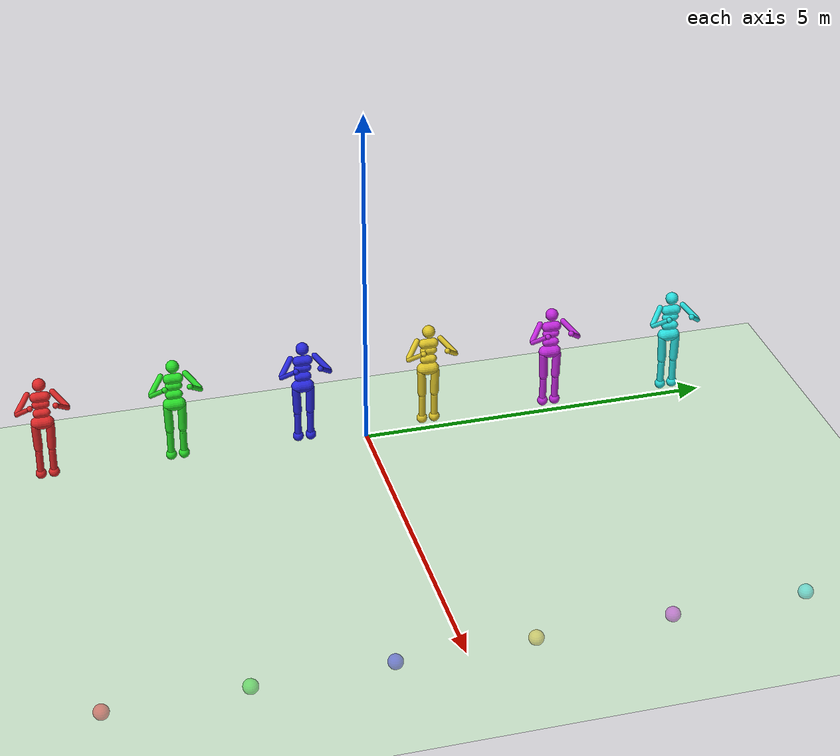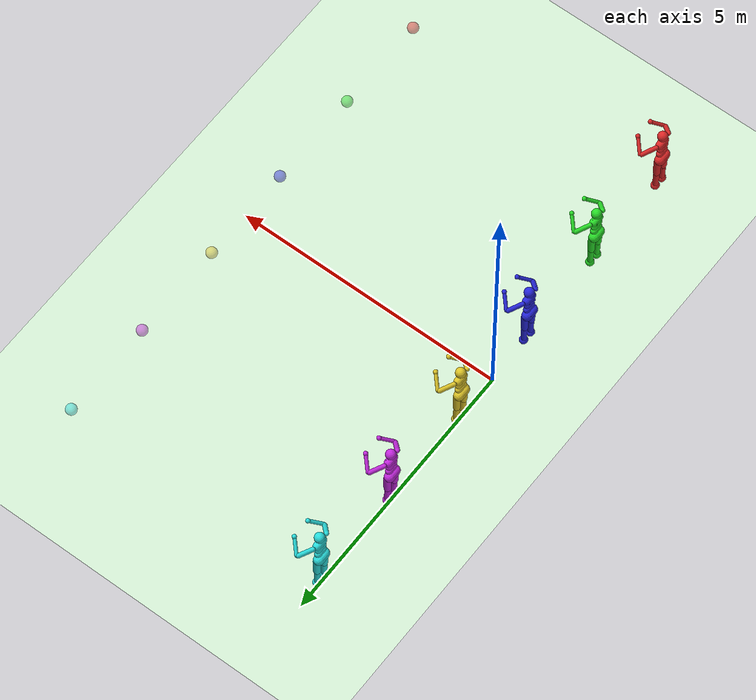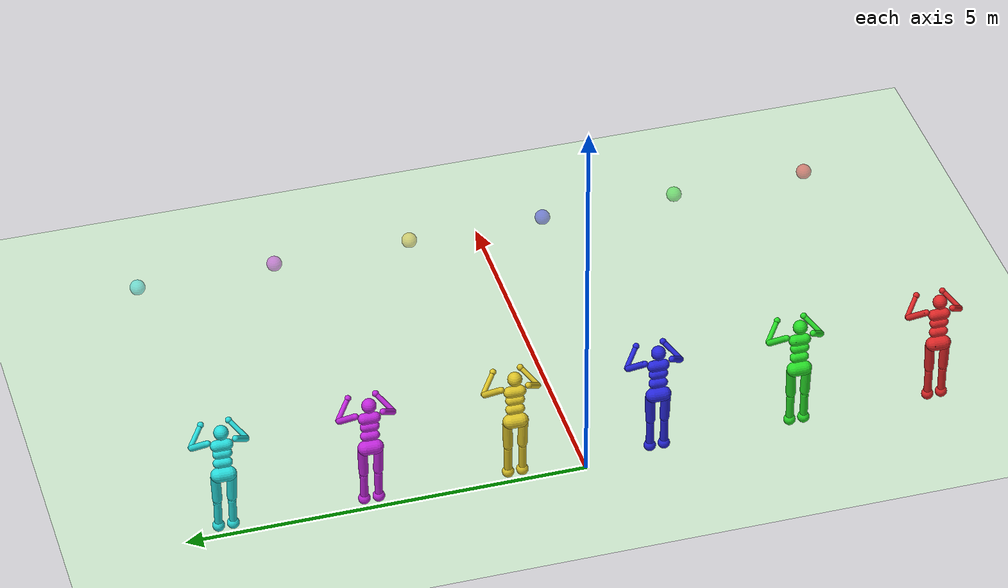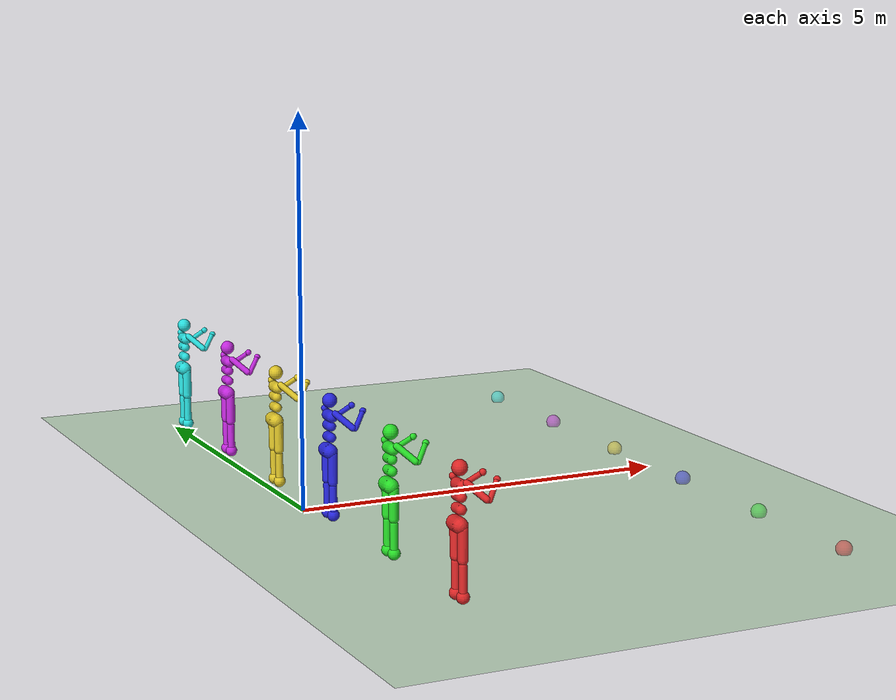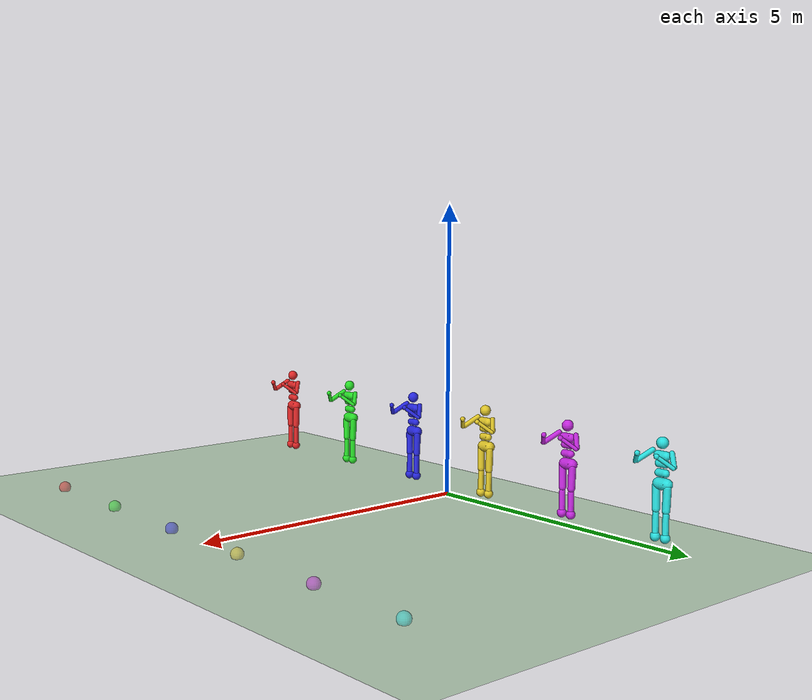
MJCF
<mujoco model="walker_ragdoll_humanoid">
  <compiler angle="radian" inertiafromgeom="true" />
  <default>
    <joint armature="0.01" damping=".1" limited="true" />
    <geom conaffinity="1" condim="3" contype="1" density="1000" friction=".7 .1 .1" material="geom" />
  </default>
  <option integrator="RK4" timestep="0.002" />

  <asset>
    <texture type="skybox" builtin="gradient" rgb1=".4 .5 .6" rgb2="0 0 0" width="100" height="100" />
    <texture builtin="flat" height="1278" mark="cross" markrgb="1 1 1" name="texgeom" random="0.01" rgb1="0.8 0.6 0.4" rgb2="0.8 0.6 0.4" type="cube" width="127" />
    <texture builtin="checker" height="100" name="texplane" rgb1="0 0 0" rgb2="0.8 0.8 0.8" type="2d" width="100" />
    <material name="MatPlane" reflectance="0.5" shininess="1" specular="1" texrepeat="60 60" texture="texplane" />
    <material name="geom" texture="texgeom" texuniform="true" />
  </asset>

  <worldbody>
    <light cutoff="100" diffuse="1 1 1" dir="-0 0 -1.3" directional="true" exponent="1" pos="0 0 1.3" specular=".1 .1 .1" />
    <geom condim="3" friction="1 .1 .1" material="MatPlane" name="floor" pos="0 0 0" rgba="0.8 0.9 0.8 1" size="20 20 0.125" type="plane" />

    <body name="agent0_target_marker" mocap="true" pos="5.0 -4.5 0.05"><geom name="agent0_target_marker_geom" type="sphere" size="0.1" rgba="0.85 0.15 0.15 0.5" contype="0" conaffinity="0" /></body><body name="agent0_agent0_torso" pos="0 -4.5 1.4">
      <camera name="agent0_track" mode="trackcom" pos="0 -4 0" xyaxes="1 0 0 0 0 1" />

      <joint armature="0" damping="0" limited="false" name="agent0_root" pos="0 0 0" stiffness="0" type="free" />

      <geom fromto="0 -.07 0 0 .07 0" name="agent0_torso1" size="0.07" type="capsule" rgba="0.85 0.15 0.15 1.0" />

      <geom name="agent0_head" pos="0 0 .19" size=".09" type="sphere" rgba="0.85 0.15 0.15 1.0" />

      <geom fromto="-.01 -.06 -.12 -.01 .06 -.12" name="agent0_uwaist" size="0.06" type="capsule" rgba="0.85 0.15 0.15 1.0" />

      <body name="agent0_lwaist" pos="-.01 0 -0.260" quat="1.000 0 -0.002 0">
        <geom fromto="0 -.06 0 0 .06 0" name="agent0_lwaist" size="0.06" type="capsule" rgba="0.85 0.15 0.15 1.0" />
        <joint armature="0.02" axis="0 0 1" damping="5" name="agent0_abdomen_z" pos="0 0 0.065" range="-0.7854 0.7854" stiffness="20" type="hinge" />
        <joint armature="0.02" axis="0 1 0" damping="5" name="agent0_abdomen_y" pos="0 0 0.065" range="-1.3090 0.5236" stiffness="10" type="hinge" />

        <body name="agent0_pelvis" pos="0 0 -0.165" quat="1.000 0 -0.002 0">
          <joint armature="0.02" axis="1 0 0" damping="5" name="agent0_abdomen_x" pos="0 0 0.1" range="-0.6109 0.6109" stiffness="10" type="hinge" />
          <geom fromto="-.02 -.07 0 -.02 .07 0" name="agent0_butt" size="0.09" type="capsule" rgba="0.85 0.15 0.15 1.0" />

          <body name="agent0_right_thigh" pos="0 -0.1 -0.04">
            <joint armature="0.01" axis="1 0 0" damping="5" name="agent0_right_hip_x" pos="0 0 0" range="-0.4363 0.0873" stiffness="10" type="hinge" />
            <joint armature="0.01" axis="0 0 1" damping="5" name="agent0_right_hip_z" pos="0 0 0" range="-1.0472 0.6109" stiffness="10" type="hinge" />
            <joint armature="0.0080" axis="0 1 0" damping="5" name="agent0_right_hip_y" pos="0 0 0" range="-1.9199 0.3491" stiffness="20" type="hinge" />
            <geom fromto="0 0 0 0 0.01 -.34" name="agent0_right_thigh1" size="0.06" type="capsule" rgba="0.85 0.15 0.15 1.0" />
            <body name="agent0_right_shin" pos="0 0.01 -0.403">
              <joint armature="0.0060" axis="0 -1 0" name="agent0_right_knee" pos="0 0 .02" range="-2.7925 -0.0349" type="hinge" />
              <geom fromto="0 0 0 0 0 -.3" name="agent0_right_shin1" size="0.049" type="capsule" rgba="0.85 0.15 0.15 1.0" />
              <body name="agent0_right_foot" pos="0 0 -0.45">
                <geom name="agent0_right_foot" pos="0 0 0.1" size="0.075" type="sphere" rgba="0.85 0.15 0.15 1.0" />
              </body>
            </body>
          </body>

          <body name="agent0_left_thigh" pos="0 0.1 -0.04">
            <joint armature="0.01" axis="-1 0 0" damping="5" name="agent0_left_hip_x" pos="0 0 0" range="-0.4363 0.0873" stiffness="10" type="hinge" />
            <joint armature="0.01" axis="0 0 -1" damping="5" name="agent0_left_hip_z" pos="0 0 0" range="-1.0472 0.6109" stiffness="10" type="hinge" />
            <joint armature="0.01" axis="0 1 0" damping="5" name="agent0_left_hip_y" pos="0 0 0" range="-1.9199 0.3491" stiffness="20" type="hinge" />
            <geom fromto="0 0 0 0 -0.01 -.34" name="agent0_left_thigh1" size="0.06" type="capsule" rgba="0.85 0.15 0.15 1.0" />
            <body name="agent0_left_shin" pos="0 -0.01 -0.403">
              <joint armature="0.0060" axis="0 -1 0" name="agent0_left_knee" pos="0 0 .02" range="-2.7925 -0.0349" stiffness="1" type="hinge" />
              <geom fromto="0 0 0 0 0 -.3" name="agent0_left_shin1" size="0.049" type="capsule" rgba="0.85 0.15 0.15 1.0" />
              <body name="agent0_left_foot" pos="0 0 -0.45">
                <geom name="agent0_left_foot" type="sphere" size="0.075" pos="0 0 0.1" rgba="0.85 0.15 0.15 1.0" />
              </body>
            </body>
          </body>

        </body>
      </body>

      <body name="agent0_right_upper_arm" pos="0 -0.17 0.06">
        <joint armature="0.0068" axis="2 1 1" name="agent0_right_shoulder1" pos="0 0 0" range="-1.4835 1.0472" stiffness="1" type="hinge" />
        <joint armature="0.0051" axis="0 -1 1" name="agent0_right_shoulder2" pos="0 0 0" range="-1.4835 1.0472" stiffness="1" type="hinge" />
        <geom fromto="0 0 0 .16 -.16 -.16" name="agent0_right_uarm1" size="0.04 0.16" type="capsule" rgba="0.85 0.15 0.15 1.0" />
        <body name="agent0_right_lower_arm" pos=".18 -.18 -.18">
          <joint armature="0.0028" axis="0 -1 1" name="agent0_right_elbow" pos="0 0 0" range="-1.5708 0.8727" stiffness="0" type="hinge" />
          <geom fromto="0.01 0.01 0.01 .17 .17 .17" name="agent0_right_larm" size="0.031" type="capsule" rgba="0.85 0.15 0.15 1.0" />
          <geom name="agent0_right_hand" pos=".18 .18 .18" size="0.04" type="sphere" rgba="0.85 0.15 0.15 1.0" />
        </body>
      </body>

      <body name="agent0_left_upper_arm" pos="0 0.17 0.06">
        <joint armature="0.0068" axis="2 -1 1" name="agent0_left_shoulder1" pos="0 0 0" range="-1.0472 1.4835" stiffness="1" type="hinge" />
        <joint armature="0.0051" axis="0 1 1" name="agent0_left_shoulder2" pos="0 0 0" range="-1.0472 1.4835" stiffness="1" type="hinge" />
        <geom fromto="0 0 0 .16 .16 -.16" name="agent0_left_uarm1" size="0.04 0.16" type="capsule" rgba="0.85 0.15 0.15 1.0" />
        <body name="agent0_left_lower_arm" pos=".18 .18 -.18">
          <joint armature="0.0028" axis="0 -1 -1" name="agent0_left_elbow" pos="0 0 0" range="-1.5708 0.8727" stiffness="0" type="hinge" />
          <geom fromto="0.01 -0.01 0.01 .17 -.17 .17" name="agent0_left_larm" size="0.031" type="capsule" rgba="0.85 0.15 0.15 1.0" />
          <geom name="agent0_left_hand" pos=".18 -.18 .18" size="0.04" type="sphere" rgba="0.85 0.15 0.15 1.0" />
        </body>
      </body>

    </body><body name="agent1_target_marker" mocap="true" pos="5.0 -2.7 0.05"><geom name="agent1_target_marker_geom" type="sphere" size="0.1" rgba="0.15 0.85 0.15 0.5" contype="0" conaffinity="0" /></body><body name="agent1_agent1_torso" pos="0 -2.7 1.4">
      <camera name="agent1_track" mode="trackcom" pos="0 -4 0" xyaxes="1 0 0 0 0 1" />

      <joint armature="0" damping="0" limited="false" name="agent1_root" pos="0 0 0" stiffness="0" type="free" />

      <geom fromto="0 -.07 0 0 .07 0" name="agent1_torso1" size="0.07" type="capsule" rgba="0.15 0.85 0.15 1.0" />

      <geom name="agent1_head" pos="0 0 .19" size=".09" type="sphere" rgba="0.15 0.85 0.15 1.0" />

      <geom fromto="-.01 -.06 -.12 -.01 .06 -.12" name="agent1_uwaist" size="0.06" type="capsule" rgba="0.15 0.85 0.15 1.0" />

      <body name="agent1_lwaist" pos="-.01 0 -0.260" quat="1.000 0 -0.002 0">
        <geom fromto="0 -.06 0 0 .06 0" name="agent1_lwaist" size="0.06" type="capsule" rgba="0.15 0.85 0.15 1.0" />
        <joint armature="0.02" axis="0 0 1" damping="5" name="agent1_abdomen_z" pos="0 0 0.065" range="-0.7854 0.7854" stiffness="20" type="hinge" />
        <joint armature="0.02" axis="0 1 0" damping="5" name="agent1_abdomen_y" pos="0 0 0.065" range="-1.3090 0.5236" stiffness="10" type="hinge" />

        <body name="agent1_pelvis" pos="0 0 -0.165" quat="1.000 0 -0.002 0">
          <joint armature="0.02" axis="1 0 0" damping="5" name="agent1_abdomen_x" pos="0 0 0.1" range="-0.6109 0.6109" stiffness="10" type="hinge" />
          <geom fromto="-.02 -.07 0 -.02 .07 0" name="agent1_butt" size="0.09" type="capsule" rgba="0.15 0.85 0.15 1.0" />

          <body name="agent1_right_thigh" pos="0 -0.1 -0.04">
            <joint armature="0.01" axis="1 0 0" damping="5" name="agent1_right_hip_x" pos="0 0 0" range="-0.4363 0.0873" stiffness="10" type="hinge" />
            <joint armature="0.01" axis="0 0 1" damping="5" name="agent1_right_hip_z" pos="0 0 0" range="-1.0472 0.6109" stiffness="10" type="hinge" />
            <joint armature="0.0080" axis="0 1 0" damping="5" name="agent1_right_hip_y" pos="0 0 0" range="-1.9199 0.3491" stiffness="20" type="hinge" />
            <geom fromto="0 0 0 0 0.01 -.34" name="agent1_right_thigh1" size="0.06" type="capsule" rgba="0.15 0.85 0.15 1.0" />
            <body name="agent1_right_shin" pos="0 0.01 -0.403">
              <joint armature="0.0060" axis="0 -1 0" name="agent1_right_knee" pos="0 0 .02" range="-2.7925 -0.0349" type="hinge" />
              <geom fromto="0 0 0 0 0 -.3" name="agent1_right_shin1" size="0.049" type="capsule" rgba="0.15 0.85 0.15 1.0" />
              <body name="agent1_right_foot" pos="0 0 -0.45">
                <geom name="agent1_right_foot" pos="0 0 0.1" size="0.075" type="sphere" rgba="0.15 0.85 0.15 1.0" />
              </body>
            </body>
          </body>

          <body name="agent1_left_thigh" pos="0 0.1 -0.04">
            <joint armature="0.01" axis="-1 0 0" damping="5" name="agent1_left_hip_x" pos="0 0 0" range="-0.4363 0.0873" stiffness="10" type="hinge" />
            <joint armature="0.01" axis="0 0 -1" damping="5" name="agent1_left_hip_z" pos="0 0 0" range="-1.0472 0.6109" stiffness="10" type="hinge" />
            <joint armature="0.01" axis="0 1 0" damping="5" name="agent1_left_hip_y" pos="0 0 0" range="-1.9199 0.3491" stiffness="20" type="hinge" />
            <geom fromto="0 0 0 0 -0.01 -.34" name="agent1_left_thigh1" size="0.06" type="capsule" rgba="0.15 0.85 0.15 1.0" />
            <body name="agent1_left_shin" pos="0 -0.01 -0.403">
              <joint armature="0.0060" axis="0 -1 0" name="agent1_left_knee" pos="0 0 .02" range="-2.7925 -0.0349" stiffness="1" type="hinge" />
              <geom fromto="0 0 0 0 0 -.3" name="agent1_left_shin1" size="0.049" type="capsule" rgba="0.15 0.85 0.15 1.0" />
              <body name="agent1_left_foot" pos="0 0 -0.45">
                <geom name="agent1_left_foot" type="sphere" size="0.075" pos="0 0 0.1" rgba="0.15 0.85 0.15 1.0" />
              </body>
            </body>
          </body>

        </body>
      </body>

      <body name="agent1_right_upper_arm" pos="0 -0.17 0.06">
        <joint armature="0.0068" axis="2 1 1" name="agent1_right_shoulder1" pos="0 0 0" range="-1.4835 1.0472" stiffness="1" type="hinge" />
        <joint armature="0.0051" axis="0 -1 1" name="agent1_right_shoulder2" pos="0 0 0" range="-1.4835 1.0472" stiffness="1" type="hinge" />
        <geom fromto="0 0 0 .16 -.16 -.16" name="agent1_right_uarm1" size="0.04 0.16" type="capsule" rgba="0.15 0.85 0.15 1.0" />
        <body name="agent1_right_lower_arm" pos=".18 -.18 -.18">
          <joint armature="0.0028" axis="0 -1 1" name="agent1_right_elbow" pos="0 0 0" range="-1.5708 0.8727" stiffness="0" type="hinge" />
          <geom fromto="0.01 0.01 0.01 .17 .17 .17" name="agent1_right_larm" size="0.031" type="capsule" rgba="0.15 0.85 0.15 1.0" />
          <geom name="agent1_right_hand" pos=".18 .18 .18" size="0.04" type="sphere" rgba="0.15 0.85 0.15 1.0" />
        </body>
      </body>

      <body name="agent1_left_upper_arm" pos="0 0.17 0.06">
        <joint armature="0.0068" axis="2 -1 1" name="agent1_left_shoulder1" pos="0 0 0" range="-1.0472 1.4835" stiffness="1" type="hinge" />
        <joint armature="0.0051" axis="0 1 1" name="agent1_left_shoulder2" pos="0 0 0" range="-1.0472 1.4835" stiffness="1" type="hinge" />
        <geom fromto="0 0 0 .16 .16 -.16" name="agent1_left_uarm1" size="0.04 0.16" type="capsule" rgba="0.15 0.85 0.15 1.0" />
        <body name="agent1_left_lower_arm" pos=".18 .18 -.18">
          <joint armature="0.0028" axis="0 -1 -1" name="agent1_left_elbow" pos="0 0 0" range="-1.5708 0.8727" stiffness="0" type="hinge" />
          <geom fromto="0.01 -0.01 0.01 .17 -.17 .17" name="agent1_left_larm" size="0.031" type="capsule" rgba="0.15 0.85 0.15 1.0" />
          <geom name="agent1_left_hand" pos=".18 -.18 .18" size="0.04" type="sphere" rgba="0.15 0.85 0.15 1.0" />
        </body>
      </body>

    </body><body name="agent2_target_marker" mocap="true" pos="5.0 -0.9 0.05"><geom name="agent2_target_marker_geom" type="sphere" size="0.1" rgba="0.15 0.15 0.85 0.5" contype="0" conaffinity="0" /></body><body name="agent2_agent2_torso" pos="0 -0.9 1.4">
      <camera name="agent2_track" mode="trackcom" pos="0 -4 0" xyaxes="1 0 0 0 0 1" />

      <joint armature="0" damping="0" limited="false" name="agent2_root" pos="0 0 0" stiffness="0" type="free" />

      <geom fromto="0 -.07 0 0 .07 0" name="agent2_torso1" size="0.07" type="capsule" rgba="0.15 0.15 0.85 1.0" />

      <geom name="agent2_head" pos="0 0 .19" size=".09" type="sphere" rgba="0.15 0.15 0.85 1.0" />

      <geom fromto="-.01 -.06 -.12 -.01 .06 -.12" name="agent2_uwaist" size="0.06" type="capsule" rgba="0.15 0.15 0.85 1.0" />

      <body name="agent2_lwaist" pos="-.01 0 -0.260" quat="1.000 0 -0.002 0">
        <geom fromto="0 -.06 0 0 .06 0" name="agent2_lwaist" size="0.06" type="capsule" rgba="0.15 0.15 0.85 1.0" />
        <joint armature="0.02" axis="0 0 1" damping="5" name="agent2_abdomen_z" pos="0 0 0.065" range="-0.7854 0.7854" stiffness="20" type="hinge" />
        <joint armature="0.02" axis="0 1 0" damping="5" name="agent2_abdomen_y" pos="0 0 0.065" range="-1.3090 0.5236" stiffness="10" type="hinge" />

        <body name="agent2_pelvis" pos="0 0 -0.165" quat="1.000 0 -0.002 0">
          <joint armature="0.02" axis="1 0 0" damping="5" name="agent2_abdomen_x" pos="0 0 0.1" range="-0.6109 0.6109" stiffness="10" type="hinge" />
          <geom fromto="-.02 -.07 0 -.02 .07 0" name="agent2_butt" size="0.09" type="capsule" rgba="0.15 0.15 0.85 1.0" />

          <body name="agent2_right_thigh" pos="0 -0.1 -0.04">
            <joint armature="0.01" axis="1 0 0" damping="5" name="agent2_right_hip_x" pos="0 0 0" range="-0.4363 0.0873" stiffness="10" type="hinge" />
            <joint armature="0.01" axis="0 0 1" damping="5" name="agent2_right_hip_z" pos="0 0 0" range="-1.0472 0.6109" stiffness="10" type="hinge" />
            <joint armature="0.0080" axis="0 1 0" damping="5" name="agent2_right_hip_y" pos="0 0 0" range="-1.9199 0.3491" stiffness="20" type="hinge" />
            <geom fromto="0 0 0 0 0.01 -.34" name="agent2_right_thigh1" size="0.06" type="capsule" rgba="0.15 0.15 0.85 1.0" />
            <body name="agent2_right_shin" pos="0 0.01 -0.403">
              <joint armature="0.0060" axis="0 -1 0" name="agent2_right_knee" pos="0 0 .02" range="-2.7925 -0.0349" type="hinge" />
              <geom fromto="0 0 0 0 0 -.3" name="agent2_right_shin1" size="0.049" type="capsule" rgba="0.15 0.15 0.85 1.0" />
              <body name="agent2_right_foot" pos="0 0 -0.45">
                <geom name="agent2_right_foot" pos="0 0 0.1" size="0.075" type="sphere" rgba="0.15 0.15 0.85 1.0" />
              </body>
            </body>
          </body>

          <body name="agent2_left_thigh" pos="0 0.1 -0.04">
            <joint armature="0.01" axis="-1 0 0" damping="5" name="agent2_left_hip_x" pos="0 0 0" range="-0.4363 0.0873" stiffness="10" type="hinge" />
            <joint armature="0.01" axis="0 0 -1" damping="5" name="agent2_left_hip_z" pos="0 0 0" range="-1.0472 0.6109" stiffness="10" type="hinge" />
            <joint armature="0.01" axis="0 1 0" damping="5" name="agent2_left_hip_y" pos="0 0 0" range="-1.9199 0.3491" stiffness="20" type="hinge" />
            <geom fromto="0 0 0 0 -0.01 -.34" name="agent2_left_thigh1" size="0.06" type="capsule" rgba="0.15 0.15 0.85 1.0" />
            <body name="agent2_left_shin" pos="0 -0.01 -0.403">
              <joint armature="0.0060" axis="0 -1 0" name="agent2_left_knee" pos="0 0 .02" range="-2.7925 -0.0349" stiffness="1" type="hinge" />
              <geom fromto="0 0 0 0 0 -.3" name="agent2_left_shin1" size="0.049" type="capsule" rgba="0.15 0.15 0.85 1.0" />
              <body name="agent2_left_foot" pos="0 0 -0.45">
                <geom name="agent2_left_foot" type="sphere" size="0.075" pos="0 0 0.1" rgba="0.15 0.15 0.85 1.0" />
              </body>
            </body>
          </body>

        </body>
      </body>

      <body name="agent2_right_upper_arm" pos="0 -0.17 0.06">
        <joint armature="0.0068" axis="2 1 1" name="agent2_right_shoulder1" pos="0 0 0" range="-1.4835 1.0472" stiffness="1" type="hinge" />
        <joint armature="0.0051" axis="0 -1 1" name="agent2_right_shoulder2" pos="0 0 0" range="-1.4835 1.0472" stiffness="1" type="hinge" />
        <geom fromto="0 0 0 .16 -.16 -.16" name="agent2_right_uarm1" size="0.04 0.16" type="capsule" rgba="0.15 0.15 0.85 1.0" />
        <body name="agent2_right_lower_arm" pos=".18 -.18 -.18">
          <joint armature="0.0028" axis="0 -1 1" name="agent2_right_elbow" pos="0 0 0" range="-1.5708 0.8727" stiffness="0" type="hinge" />
          <geom fromto="0.01 0.01 0.01 .17 .17 .17" name="agent2_right_larm" size="0.031" type="capsule" rgba="0.15 0.15 0.85 1.0" />
          <geom name="agent2_right_hand" pos=".18 .18 .18" size="0.04" type="sphere" rgba="0.15 0.15 0.85 1.0" />
        </body>
      </body>

      <body name="agent2_left_upper_arm" pos="0 0.17 0.06">
        <joint armature="0.0068" axis="2 -1 1" name="agent2_left_shoulder1" pos="0 0 0" range="-1.0472 1.4835" stiffness="1" type="hinge" />
        <joint armature="0.0051" axis="0 1 1" name="agent2_left_shoulder2" pos="0 0 0" range="-1.0472 1.4835" stiffness="1" type="hinge" />
        <geom fromto="0 0 0 .16 .16 -.16" name="agent2_left_uarm1" size="0.04 0.16" type="capsule" rgba="0.15 0.15 0.85 1.0" />
        <body name="agent2_left_lower_arm" pos=".18 .18 -.18">
          <joint armature="0.0028" axis="0 -1 -1" name="agent2_left_elbow" pos="0 0 0" range="-1.5708 0.8727" stiffness="0" type="hinge" />
          <geom fromto="0.01 -0.01 0.01 .17 -.17 .17" name="agent2_left_larm" size="0.031" type="capsule" rgba="0.15 0.15 0.85 1.0" />
          <geom name="agent2_left_hand" pos=".18 -.18 .18" size="0.04" type="sphere" rgba="0.15 0.15 0.85 1.0" />
        </body>
      </body>

    </body><body name="agent3_target_marker" mocap="true" pos="5.0 0.9 0.05"><geom name="agent3_target_marker_geom" type="sphere" size="0.1" rgba="0.85 0.75 0.15 0.5" contype="0" conaffinity="0" /></body><body name="agent3_agent3_torso" pos="0 0.9 1.4">
      <camera name="agent3_track" mode="trackcom" pos="0 -4 0" xyaxes="1 0 0 0 0 1" />

      <joint armature="0" damping="0" limited="false" name="agent3_root" pos="0 0 0" stiffness="0" type="free" />

      <geom fromto="0 -.07 0 0 .07 0" name="agent3_torso1" size="0.07" type="capsule" rgba="0.85 0.75 0.15 1.0" />

      <geom name="agent3_head" pos="0 0 .19" size=".09" type="sphere" rgba="0.85 0.75 0.15 1.0" />

      <geom fromto="-.01 -.06 -.12 -.01 .06 -.12" name="agent3_uwaist" size="0.06" type="capsule" rgba="0.85 0.75 0.15 1.0" />

      <body name="agent3_lwaist" pos="-.01 0 -0.260" quat="1.000 0 -0.002 0">
        <geom fromto="0 -.06 0 0 .06 0" name="agent3_lwaist" size="0.06" type="capsule" rgba="0.85 0.75 0.15 1.0" />
        <joint armature="0.02" axis="0 0 1" damping="5" name="agent3_abdomen_z" pos="0 0 0.065" range="-0.7854 0.7854" stiffness="20" type="hinge" />
        <joint armature="0.02" axis="0 1 0" damping="5" name="agent3_abdomen_y" pos="0 0 0.065" range="-1.3090 0.5236" stiffness="10" type="hinge" />

        <body name="agent3_pelvis" pos="0 0 -0.165" quat="1.000 0 -0.002 0">
          <joint armature="0.02" axis="1 0 0" damping="5" name="agent3_abdomen_x" pos="0 0 0.1" range="-0.6109 0.6109" stiffness="10" type="hinge" />
          <geom fromto="-.02 -.07 0 -.02 .07 0" name="agent3_butt" size="0.09" type="capsule" rgba="0.85 0.75 0.15 1.0" />

          <body name="agent3_right_thigh" pos="0 -0.1 -0.04">
            <joint armature="0.01" axis="1 0 0" damping="5" name="agent3_right_hip_x" pos="0 0 0" range="-0.4363 0.0873" stiffness="10" type="hinge" />
            <joint armature="0.01" axis="0 0 1" damping="5" name="agent3_right_hip_z" pos="0 0 0" range="-1.0472 0.6109" stiffness="10" type="hinge" />
            <joint armature="0.0080" axis="0 1 0" damping="5" name="agent3_right_hip_y" pos="0 0 0" range="-1.9199 0.3491" stiffness="20" type="hinge" />
            <geom fromto="0 0 0 0 0.01 -.34" name="agent3_right_thigh1" size="0.06" type="capsule" rgba="0.85 0.75 0.15 1.0" />
            <body name="agent3_right_shin" pos="0 0.01 -0.403">
              <joint armature="0.0060" axis="0 -1 0" name="agent3_right_knee" pos="0 0 .02" range="-2.7925 -0.0349" type="hinge" />
              <geom fromto="0 0 0 0 0 -.3" name="agent3_right_shin1" size="0.049" type="capsule" rgba="0.85 0.75 0.15 1.0" />
              <body name="agent3_right_foot" pos="0 0 -0.45">
                <geom name="agent3_right_foot" pos="0 0 0.1" size="0.075" type="sphere" rgba="0.85 0.75 0.15 1.0" />
              </body>
            </body>
          </body>

          <body name="agent3_left_thigh" pos="0 0.1 -0.04">
            <joint armature="0.01" axis="-1 0 0" damping="5" name="agent3_left_hip_x" pos="0 0 0" range="-0.4363 0.0873" stiffness="10" type="hinge" />
            <joint armature="0.01" axis="0 0 -1" damping="5" name="agent3_left_hip_z" pos="0 0 0" range="-1.0472 0.6109" stiffness="10" type="hinge" />
            <joint armature="0.01" axis="0 1 0" damping="5" name="agent3_left_hip_y" pos="0 0 0" range="-1.9199 0.3491" stiffness="20" type="hinge" />
            <geom fromto="0 0 0 0 -0.01 -.34" name="agent3_left_thigh1" size="0.06" type="capsule" rgba="0.85 0.75 0.15 1.0" />
            <body name="agent3_left_shin" pos="0 -0.01 -0.403">
              <joint armature="0.0060" axis="0 -1 0" name="agent3_left_knee" pos="0 0 .02" range="-2.7925 -0.0349" stiffness="1" type="hinge" />
              <geom fromto="0 0 0 0 0 -.3" name="agent3_left_shin1" size="0.049" type="capsule" rgba="0.85 0.75 0.15 1.0" />
              <body name="agent3_left_foot" pos="0 0 -0.45">
                <geom name="agent3_left_foot" type="sphere" size="0.075" pos="0 0 0.1" rgba="0.85 0.75 0.15 1.0" />
              </body>
            </body>
          </body>

        </body>
      </body>

      <body name="agent3_right_upper_arm" pos="0 -0.17 0.06">
        <joint armature="0.0068" axis="2 1 1" name="agent3_right_shoulder1" pos="0 0 0" range="-1.4835 1.0472" stiffness="1" type="hinge" />
        <joint armature="0.0051" axis="0 -1 1" name="agent3_right_shoulder2" pos="0 0 0" range="-1.4835 1.0472" stiffness="1" type="hinge" />
        <geom fromto="0 0 0 .16 -.16 -.16" name="agent3_right_uarm1" size="0.04 0.16" type="capsule" rgba="0.85 0.75 0.15 1.0" />
        <body name="agent3_right_lower_arm" pos=".18 -.18 -.18">
          <joint armature="0.0028" axis="0 -1 1" name="agent3_right_elbow" pos="0 0 0" range="-1.5708 0.8727" stiffness="0" type="hinge" />
          <geom fromto="0.01 0.01 0.01 .17 .17 .17" name="agent3_right_larm" size="0.031" type="capsule" rgba="0.85 0.75 0.15 1.0" />
          <geom name="agent3_right_hand" pos=".18 .18 .18" size="0.04" type="sphere" rgba="0.85 0.75 0.15 1.0" />
        </body>
      </body>

      <body name="agent3_left_upper_arm" pos="0 0.17 0.06">
        <joint armature="0.0068" axis="2 -1 1" name="agent3_left_shoulder1" pos="0 0 0" range="-1.0472 1.4835" stiffness="1" type="hinge" />
        <joint armature="0.0051" axis="0 1 1" name="agent3_left_shoulder2" pos="0 0 0" range="-1.0472 1.4835" stiffness="1" type="hinge" />
        <geom fromto="0 0 0 .16 .16 -.16" name="agent3_left_uarm1" size="0.04 0.16" type="capsule" rgba="0.85 0.75 0.15 1.0" />
        <body name="agent3_left_lower_arm" pos=".18 .18 -.18">
          <joint armature="0.0028" axis="0 -1 -1" name="agent3_left_elbow" pos="0 0 0" range="-1.5708 0.8727" stiffness="0" type="hinge" />
          <geom fromto="0.01 -0.01 0.01 .17 -.17 .17" name="agent3_left_larm" size="0.031" type="capsule" rgba="0.85 0.75 0.15 1.0" />
          <geom name="agent3_left_hand" pos=".18 -.18 .18" size="0.04" type="sphere" rgba="0.85 0.75 0.15 1.0" />
        </body>
      </body>

    </body><body name="agent4_target_marker" mocap="true" pos="5.0 2.7 0.05"><geom name="agent4_target_marker_geom" type="sphere" size="0.1" rgba="0.75 0.15 0.85 0.5" contype="0" conaffinity="0" /></body><body name="agent4_agent4_torso" pos="0 2.7 1.4">
      <camera name="agent4_track" mode="trackcom" pos="0 -4 0" xyaxes="1 0 0 0 0 1" />

      <joint armature="0" damping="0" limited="false" name="agent4_root" pos="0 0 0" stiffness="0" type="free" />

      <geom fromto="0 -.07 0 0 .07 0" name="agent4_torso1" size="0.07" type="capsule" rgba="0.75 0.15 0.85 1.0" />

      <geom name="agent4_head" pos="0 0 .19" size=".09" type="sphere" rgba="0.75 0.15 0.85 1.0" />

      <geom fromto="-.01 -.06 -.12 -.01 .06 -.12" name="agent4_uwaist" size="0.06" type="capsule" rgba="0.75 0.15 0.85 1.0" />

      <body name="agent4_lwaist" pos="-.01 0 -0.260" quat="1.000 0 -0.002 0">
        <geom fromto="0 -.06 0 0 .06 0" name="agent4_lwaist" size="0.06" type="capsule" rgba="0.75 0.15 0.85 1.0" />
        <joint armature="0.02" axis="0 0 1" damping="5" name="agent4_abdomen_z" pos="0 0 0.065" range="-0.7854 0.7854" stiffness="20" type="hinge" />
        <joint armature="0.02" axis="0 1 0" damping="5" name="agent4_abdomen_y" pos="0 0 0.065" range="-1.3090 0.5236" stiffness="10" type="hinge" />

        <body name="agent4_pelvis" pos="0 0 -0.165" quat="1.000 0 -0.002 0">
          <joint armature="0.02" axis="1 0 0" damping="5" name="agent4_abdomen_x" pos="0 0 0.1" range="-0.6109 0.6109" stiffness="10" type="hinge" />
          <geom fromto="-.02 -.07 0 -.02 .07 0" name="agent4_butt" size="0.09" type="capsule" rgba="0.75 0.15 0.85 1.0" />

          <body name="agent4_right_thigh" pos="0 -0.1 -0.04">
            <joint armature="0.01" axis="1 0 0" damping="5" name="agent4_right_hip_x" pos="0 0 0" range="-0.4363 0.0873" stiffness="10" type="hinge" />
            <joint armature="0.01" axis="0 0 1" damping="5" name="agent4_right_hip_z" pos="0 0 0" range="-1.0472 0.6109" stiffness="10" type="hinge" />
            <joint armature="0.0080" axis="0 1 0" damping="5" name="agent4_right_hip_y" pos="0 0 0" range="-1.9199 0.3491" stiffness="20" type="hinge" />
            <geom fromto="0 0 0 0 0.01 -.34" name="agent4_right_thigh1" size="0.06" type="capsule" rgba="0.75 0.15 0.85 1.0" />
            <body name="agent4_right_shin" pos="0 0.01 -0.403">
              <joint armature="0.0060" axis="0 -1 0" name="agent4_right_knee" pos="0 0 .02" range="-2.7925 -0.0349" type="hinge" />
              <geom fromto="0 0 0 0 0 -.3" name="agent4_right_shin1" size="0.049" type="capsule" rgba="0.75 0.15 0.85 1.0" />
              <body name="agent4_right_foot" pos="0 0 -0.45">
                <geom name="agent4_right_foot" pos="0 0 0.1" size="0.075" type="sphere" rgba="0.75 0.15 0.85 1.0" />
              </body>
            </body>
          </body>

          <body name="agent4_left_thigh" pos="0 0.1 -0.04">
            <joint armature="0.01" axis="-1 0 0" damping="5" name="agent4_left_hip_x" pos="0 0 0" range="-0.4363 0.0873" stiffness="10" type="hinge" />
            <joint armature="0.01" axis="0 0 -1" damping="5" name="agent4_left_hip_z" pos="0 0 0" range="-1.0472 0.6109" stiffness="10" type="hinge" />
            <joint armature="0.01" axis="0 1 0" damping="5" name="agent4_left_hip_y" pos="0 0 0" range="-1.9199 0.3491" stiffness="20" type="hinge" />
            <geom fromto="0 0 0 0 -0.01 -.34" name="agent4_left_thigh1" size="0.06" type="capsule" rgba="0.75 0.15 0.85 1.0" />
            <body name="agent4_left_shin" pos="0 -0.01 -0.403">
              <joint armature="0.0060" axis="0 -1 0" name="agent4_left_knee" pos="0 0 .02" range="-2.7925 -0.0349" stiffness="1" type="hinge" />
              <geom fromto="0 0 0 0 0 -.3" name="agent4_left_shin1" size="0.049" type="capsule" rgba="0.75 0.15 0.85 1.0" />
              <body name="agent4_left_foot" pos="0 0 -0.45">
                <geom name="agent4_left_foot" type="sphere" size="0.075" pos="0 0 0.1" rgba="0.75 0.15 0.85 1.0" />
              </body>
            </body>
          </body>

        </body>
      </body>

      <body name="agent4_right_upper_arm" pos="0 -0.17 0.06">
        <joint armature="0.0068" axis="2 1 1" name="agent4_right_shoulder1" pos="0 0 0" range="-1.4835 1.0472" stiffness="1" type="hinge" />
        <joint armature="0.0051" axis="0 -1 1" name="agent4_right_shoulder2" pos="0 0 0" range="-1.4835 1.0472" stiffness="1" type="hinge" />
        <geom fromto="0 0 0 .16 -.16 -.16" name="agent4_right_uarm1" size="0.04 0.16" type="capsule" rgba="0.75 0.15 0.85 1.0" />
        <body name="agent4_right_lower_arm" pos=".18 -.18 -.18">
          <joint armature="0.0028" axis="0 -1 1" name="agent4_right_elbow" pos="0 0 0" range="-1.5708 0.8727" stiffness="0" type="hinge" />
          <geom fromto="0.01 0.01 0.01 .17 .17 .17" name="agent4_right_larm" size="0.031" type="capsule" rgba="0.75 0.15 0.85 1.0" />
          <geom name="agent4_right_hand" pos=".18 .18 .18" size="0.04" type="sphere" rgba="0.75 0.15 0.85 1.0" />
        </body>
      </body>

      <body name="agent4_left_upper_arm" pos="0 0.17 0.06">
        <joint armature="0.0068" axis="2 -1 1" name="agent4_left_shoulder1" pos="0 0 0" range="-1.0472 1.4835" stiffness="1" type="hinge" />
        <joint armature="0.0051" axis="0 1 1" name="agent4_left_shoulder2" pos="0 0 0" range="-1.0472 1.4835" stiffness="1" type="hinge" />
        <geom fromto="0 0 0 .16 .16 -.16" name="agent4_left_uarm1" size="0.04 0.16" type="capsule" rgba="0.75 0.15 0.85 1.0" />
        <body name="agent4_left_lower_arm" pos=".18 .18 -.18">
          <joint armature="0.0028" axis="0 -1 -1" name="agent4_left_elbow" pos="0 0 0" range="-1.5708 0.8727" stiffness="0" type="hinge" />
          <geom fromto="0.01 -0.01 0.01 .17 -.17 .17" name="agent4_left_larm" size="0.031" type="capsule" rgba="0.75 0.15 0.85 1.0" />
          <geom name="agent4_left_hand" pos=".18 -.18 .18" size="0.04" type="sphere" rgba="0.75 0.15 0.85 1.0" />
        </body>
      </body>

    </body><body name="agent5_target_marker" mocap="true" pos="5.0 4.5 0.05"><geom name="agent5_target_marker_geom" type="sphere" size="0.1" rgba="0.15 0.85 0.85 0.5" contype="0" conaffinity="0" /></body><body name="agent5_agent5_torso" pos="0 4.5 1.4">
      <camera name="agent5_track" mode="trackcom" pos="0 -4 0" xyaxes="1 0 0 0 0 1" />

      <joint armature="0" damping="0" limited="false" name="agent5_root" pos="0 0 0" stiffness="0" type="free" />

      <geom fromto="0 -.07 0 0 .07 0" name="agent5_torso1" size="0.07" type="capsule" rgba="0.15 0.85 0.85 1.0" />

      <geom name="agent5_head" pos="0 0 .19" size=".09" type="sphere" rgba="0.15 0.85 0.85 1.0" />

      <geom fromto="-.01 -.06 -.12 -.01 .06 -.12" name="agent5_uwaist" size="0.06" type="capsule" rgba="0.15 0.85 0.85 1.0" />

      <body name="agent5_lwaist" pos="-.01 0 -0.260" quat="1.000 0 -0.002 0">
        <geom fromto="0 -.06 0 0 .06 0" name="agent5_lwaist" size="0.06" type="capsule" rgba="0.15 0.85 0.85 1.0" />
        <joint armature="0.02" axis="0 0 1" damping="5" name="agent5_abdomen_z" pos="0 0 0.065" range="-0.7854 0.7854" stiffness="20" type="hinge" />
        <joint armature="0.02" axis="0 1 0" damping="5" name="agent5_abdomen_y" pos="0 0 0.065" range="-1.3090 0.5236" stiffness="10" type="hinge" />

        <body name="agent5_pelvis" pos="0 0 -0.165" quat="1.000 0 -0.002 0">
          <joint armature="0.02" axis="1 0 0" damping="5" name="agent5_abdomen_x" pos="0 0 0.1" range="-0.6109 0.6109" stiffness="10" type="hinge" />
          <geom fromto="-.02 -.07 0 -.02 .07 0" name="agent5_butt" size="0.09" type="capsule" rgba="0.15 0.85 0.85 1.0" />

          <body name="agent5_right_thigh" pos="0 -0.1 -0.04">
            <joint armature="0.01" axis="1 0 0" damping="5" name="agent5_right_hip_x" pos="0 0 0" range="-0.4363 0.0873" stiffness="10" type="hinge" />
            <joint armature="0.01" axis="0 0 1" damping="5" name="agent5_right_hip_z" pos="0 0 0" range="-1.0472 0.6109" stiffness="10" type="hinge" />
            <joint armature="0.0080" axis="0 1 0" damping="5" name="agent5_right_hip_y" pos="0 0 0" range="-1.9199 0.3491" stiffness="20" type="hinge" />
            <geom fromto="0 0 0 0 0.01 -.34" name="agent5_right_thigh1" size="0.06" type="capsule" rgba="0.15 0.85 0.85 1.0" />
            <body name="agent5_right_shin" pos="0 0.01 -0.403">
              <joint armature="0.0060" axis="0 -1 0" name="agent5_right_knee" pos="0 0 .02" range="-2.7925 -0.0349" type="hinge" />
              <geom fromto="0 0 0 0 0 -.3" name="agent5_right_shin1" size="0.049" type="capsule" rgba="0.15 0.85 0.85 1.0" />
              <body name="agent5_right_foot" pos="0 0 -0.45">
                <geom name="agent5_right_foot" pos="0 0 0.1" size="0.075" type="sphere" rgba="0.15 0.85 0.85 1.0" />
              </body>
            </body>
          </body>

          <body name="agent5_left_thigh" pos="0 0.1 -0.04">
            <joint armature="0.01" axis="-1 0 0" damping="5" name="agent5_left_hip_x" pos="0 0 0" range="-0.4363 0.0873" stiffness="10" type="hinge" />
            <joint armature="0.01" axis="0 0 -1" damping="5" name="agent5_left_hip_z" pos="0 0 0" range="-1.0472 0.6109" stiffness="10" type="hinge" />
            <joint armature="0.01" axis="0 1 0" damping="5" name="agent5_left_hip_y" pos="0 0 0" range="-1.9199 0.3491" stiffness="20" type="hinge" />
            <geom fromto="0 0 0 0 -0.01 -.34" name="agent5_left_thigh1" size="0.06" type="capsule" rgba="0.15 0.85 0.85 1.0" />
            <body name="agent5_left_shin" pos="0 -0.01 -0.403">
              <joint armature="0.0060" axis="0 -1 0" name="agent5_left_knee" pos="0 0 .02" range="-2.7925 -0.0349" stiffness="1" type="hinge" />
              <geom fromto="0 0 0 0 0 -.3" name="agent5_left_shin1" size="0.049" type="capsule" rgba="0.15 0.85 0.85 1.0" />
              <body name="agent5_left_foot" pos="0 0 -0.45">
                <geom name="agent5_left_foot" type="sphere" size="0.075" pos="0 0 0.1" rgba="0.15 0.85 0.85 1.0" />
              </body>
            </body>
          </body>

        </body>
      </body>

      <body name="agent5_right_upper_arm" pos="0 -0.17 0.06">
        <joint armature="0.0068" axis="2 1 1" name="agent5_right_shoulder1" pos="0 0 0" range="-1.4835 1.0472" stiffness="1" type="hinge" />
        <joint armature="0.0051" axis="0 -1 1" name="agent5_right_shoulder2" pos="0 0 0" range="-1.4835 1.0472" stiffness="1" type="hinge" />
        <geom fromto="0 0 0 .16 -.16 -.16" name="agent5_right_uarm1" size="0.04 0.16" type="capsule" rgba="0.15 0.85 0.85 1.0" />
        <body name="agent5_right_lower_arm" pos=".18 -.18 -.18">
          <joint armature="0.0028" axis="0 -1 1" name="agent5_right_elbow" pos="0 0 0" range="-1.5708 0.8727" stiffness="0" type="hinge" />
          <geom fromto="0.01 0.01 0.01 .17 .17 .17" name="agent5_right_larm" size="0.031" type="capsule" rgba="0.15 0.85 0.85 1.0" />
          <geom name="agent5_right_hand" pos=".18 .18 .18" size="0.04" type="sphere" rgba="0.15 0.85 0.85 1.0" />
        </body>
      </body>

      <body name="agent5_left_upper_arm" pos="0 0.17 0.06">
        <joint armature="0.0068" axis="2 -1 1" name="agent5_left_shoulder1" pos="0 0 0" range="-1.0472 1.4835" stiffness="1" type="hinge" />
        <joint armature="0.0051" axis="0 1 1" name="agent5_left_shoulder2" pos="0 0 0" range="-1.0472 1.4835" stiffness="1" type="hinge" />
        <geom fromto="0 0 0 .16 .16 -.16" name="agent5_left_uarm1" size="0.04 0.16" type="capsule" rgba="0.15 0.85 0.85 1.0" />
        <body name="agent5_left_lower_arm" pos=".18 .18 -.18">
          <joint armature="0.0028" axis="0 -1 -1" name="agent5_left_elbow" pos="0 0 0" range="-1.5708 0.8727" stiffness="0" type="hinge" />
          <geom fromto="0.01 -0.01 0.01 .17 -.17 .17" name="agent5_left_larm" size="0.031" type="capsule" rgba="0.15 0.85 0.85 1.0" />
          <geom name="agent5_left_hand" pos=".18 -.18 .18" size="0.04" type="sphere" rgba="0.15 0.85 0.85 1.0" />
        </body>
      </body>

    </body></worldbody>

  <tendon>
    <fixed name="agent0_left_hipknee">
      <joint coef="-1" joint="agent0_left_hip_y" />
      <joint coef="1" joint="agent0_left_knee" />
    </fixed><fixed name="agent0_right_hipknee">
      <joint coef="-1" joint="agent0_right_hip_y" />
      <joint coef="1" joint="agent0_right_knee" />
    </fixed><fixed name="agent1_left_hipknee">
      <joint coef="-1" joint="agent1_left_hip_y" />
      <joint coef="1" joint="agent1_left_knee" />
    </fixed><fixed name="agent1_right_hipknee">
      <joint coef="-1" joint="agent1_right_hip_y" />
      <joint coef="1" joint="agent1_right_knee" />
    </fixed><fixed name="agent2_left_hipknee">
      <joint coef="-1" joint="agent2_left_hip_y" />
      <joint coef="1" joint="agent2_left_knee" />
    </fixed><fixed name="agent2_right_hipknee">
      <joint coef="-1" joint="agent2_right_hip_y" />
      <joint coef="1" joint="agent2_right_knee" />
    </fixed><fixed name="agent3_left_hipknee">
      <joint coef="-1" joint="agent3_left_hip_y" />
      <joint coef="1" joint="agent3_left_knee" />
    </fixed><fixed name="agent3_right_hipknee">
      <joint coef="-1" joint="agent3_right_hip_y" />
      <joint coef="1" joint="agent3_right_knee" />
    </fixed><fixed name="agent4_left_hipknee">
      <joint coef="-1" joint="agent4_left_hip_y" />
      <joint coef="1" joint="agent4_left_knee" />
    </fixed><fixed name="agent4_right_hipknee">
      <joint coef="-1" joint="agent4_right_hip_y" />
      <joint coef="1" joint="agent4_right_knee" />
    </fixed><fixed name="agent5_left_hipknee">
      <joint coef="-1" joint="agent5_left_hip_y" />
      <joint coef="1" joint="agent5_left_knee" />
    </fixed><fixed name="agent5_right_hipknee">
      <joint coef="-1" joint="agent5_right_hip_y" />
      <joint coef="1" joint="agent5_right_knee" />
    </fixed></tendon>

  <actuator>
    <motor ctrllimited="true" ctrlrange="-1.0 1.0" gear="100" joint="agent0_abdomen_y" name="agent0_abdomen_y" /><motor ctrllimited="true" ctrlrange="-1.0 1.0" gear="100" joint="agent0_abdomen_z" name="agent0_abdomen_z" /><motor ctrllimited="true" ctrlrange="-1.0 1.0" gear="100" joint="agent0_abdomen_x" name="agent0_abdomen_x" /><motor ctrllimited="true" ctrlrange="-1.0 1.0" gear="100" joint="agent0_right_hip_x" name="agent0_right_hip_x" /><motor ctrllimited="true" ctrlrange="-1.0 1.0" gear="100" joint="agent0_right_hip_z" name="agent0_right_hip_z" /><motor ctrllimited="true" ctrlrange="-1.0 1.0" gear="300" joint="agent0_right_hip_y" name="agent0_right_hip_y" /><motor ctrllimited="true" ctrlrange="-1.0 1.0" gear="200" joint="agent0_right_knee" name="agent0_right_knee" /><motor ctrllimited="true" ctrlrange="-1.0 1.0" gear="100" joint="agent0_left_hip_x" name="agent0_left_hip_x" /><motor ctrllimited="true" ctrlrange="-1.0 1.0" gear="100" joint="agent0_left_hip_z" name="agent0_left_hip_z" /><motor ctrllimited="true" ctrlrange="-1.0 1.0" gear="300" joint="agent0_left_hip_y" name="agent0_left_hip_y" /><motor ctrllimited="true" ctrlrange="-1.0 1.0" gear="200" joint="agent0_left_knee" name="agent0_left_knee" /><motor ctrllimited="true" ctrlrange="-1.0 1.0" gear="25" joint="agent0_right_shoulder1" name="agent0_right_shoulder1" /><motor ctrllimited="true" ctrlrange="-1.0 1.0" gear="25" joint="agent0_right_shoulder2" name="agent0_right_shoulder2" /><motor ctrllimited="true" ctrlrange="-1.0 1.0" gear="25" joint="agent0_right_elbow" name="agent0_right_elbow" /><motor ctrllimited="true" ctrlrange="-1.0 1.0" gear="25" joint="agent0_left_shoulder1" name="agent0_left_shoulder1" /><motor ctrllimited="true" ctrlrange="-1.0 1.0" gear="25" joint="agent0_left_shoulder2" name="agent0_left_shoulder2" /><motor ctrllimited="true" ctrlrange="-1.0 1.0" gear="25" joint="agent0_left_elbow" name="agent0_left_elbow" /><motor ctrllimited="true" ctrlrange="-1.0 1.0" gear="100" joint="agent1_abdomen_y" name="agent1_abdomen_y" /><motor ctrllimited="true" ctrlrange="-1.0 1.0" gear="100" joint="agent1_abdomen_z" name="agent1_abdomen_z" /><motor ctrllimited="true" ctrlrange="-1.0 1.0" gear="100" joint="agent1_abdomen_x" name="agent1_abdomen_x" /><motor ctrllimited="true" ctrlrange="-1.0 1.0" gear="100" joint="agent1_right_hip_x" name="agent1_right_hip_x" /><motor ctrllimited="true" ctrlrange="-1.0 1.0" gear="100" joint="agent1_right_hip_z" name="agent1_right_hip_z" /><motor ctrllimited="true" ctrlrange="-1.0 1.0" gear="300" joint="agent1_right_hip_y" name="agent1_right_hip_y" /><motor ctrllimited="true" ctrlrange="-1.0 1.0" gear="200" joint="agent1_right_knee" name="agent1_right_knee" /><motor ctrllimited="true" ctrlrange="-1.0 1.0" gear="100" joint="agent1_left_hip_x" name="agent1_left_hip_x" /><motor ctrllimited="true" ctrlrange="-1.0 1.0" gear="100" joint="agent1_left_hip_z" name="agent1_left_hip_z" /><motor ctrllimited="true" ctrlrange="-1.0 1.0" gear="300" joint="agent1_left_hip_y" name="agent1_left_hip_y" /><motor ctrllimited="true" ctrlrange="-1.0 1.0" gear="200" joint="agent1_left_knee" name="agent1_left_knee" /><motor ctrllimited="true" ctrlrange="-1.0 1.0" gear="25" joint="agent1_right_shoulder1" name="agent1_right_shoulder1" /><motor ctrllimited="true" ctrlrange="-1.0 1.0" gear="25" joint="agent1_right_shoulder2" name="agent1_right_shoulder2" /><motor ctrllimited="true" ctrlrange="-1.0 1.0" gear="25" joint="agent1_right_elbow" name="agent1_right_elbow" /><motor ctrllimited="true" ctrlrange="-1.0 1.0" gear="25" joint="agent1_left_shoulder1" name="agent1_left_shoulder1" /><motor ctrllimited="true" ctrlrange="-1.0 1.0" gear="25" joint="agent1_left_shoulder2" name="agent1_left_shoulder2" /><motor ctrllimited="true" ctrlrange="-1.0 1.0" gear="25" joint="agent1_left_elbow" name="agent1_left_elbow" /><motor ctrllimited="true" ctrlrange="-1.0 1.0" gear="100" joint="agent2_abdomen_y" name="agent2_abdomen_y" /><motor ctrllimited="true" ctrlrange="-1.0 1.0" gear="100" joint="agent2_abdomen_z" name="agent2_abdomen_z" /><motor ctrllimited="true" ctrlrange="-1.0 1.0" gear="100" joint="agent2_abdomen_x" name="agent2_abdomen_x" /><motor ctrllimited="true" ctrlrange="-1.0 1.0" gear="100" joint="agent2_right_hip_x" name="agent2_right_hip_x" /><motor ctrllimited="true" ctrlrange="-1.0 1.0" gear="100" joint="agent2_right_hip_z" name="agent2_right_hip_z" /><motor ctrllimited="true" ctrlrange="-1.0 1.0" gear="300" joint="agent2_right_hip_y" name="agent2_right_hip_y" /><motor ctrllimited="true" ctrlrange="-1.0 1.0" gear="200" joint="agent2_right_knee" name="agent2_right_knee" /><motor ctrllimited="true" ctrlrange="-1.0 1.0" gear="100" joint="agent2_left_hip_x" name="agent2_left_hip_x" /><motor ctrllimited="true" ctrlrange="-1.0 1.0" gear="100" joint="agent2_left_hip_z" name="agent2_left_hip_z" /><motor ctrllimited="true" ctrlrange="-1.0 1.0" gear="300" joint="agent2_left_hip_y" name="agent2_left_hip_y" /><motor ctrllimited="true" ctrlrange="-1.0 1.0" gear="200" joint="agent2_left_knee" name="agent2_left_knee" /><motor ctrllimited="true" ctrlrange="-1.0 1.0" gear="25" joint="agent2_right_shoulder1" name="agent2_right_shoulder1" /><motor ctrllimited="true" ctrlrange="-1.0 1.0" gear="25" joint="agent2_right_shoulder2" name="agent2_right_shoulder2" /><motor ctrllimited="true" ctrlrange="-1.0 1.0" gear="25" joint="agent2_right_elbow" name="agent2_right_elbow" /><motor ctrllimited="true" ctrlrange="-1.0 1.0" gear="25" joint="agent2_left_shoulder1" name="agent2_left_shoulder1" /><motor ctrllimited="true" ctrlrange="-1.0 1.0" gear="25" joint="agent2_left_shoulder2" name="agent2_left_shoulder2" /><motor ctrllimited="true" ctrlrange="-1.0 1.0" gear="25" joint="agent2_left_elbow" name="agent2_left_elbow" /><motor ctrllimited="true" ctrlrange="-1.0 1.0" gear="100" joint="agent3_abdomen_y" name="agent3_abdomen_y" /><motor ctrllimited="true" ctrlrange="-1.0 1.0" gear="100" joint="agent3_abdomen_z" name="agent3_abdomen_z" /><motor ctrllimited="true" ctrlrange="-1.0 1.0" gear="100" joint="agent3_abdomen_x" name="agent3_abdomen_x" /><motor ctrllimited="true" ctrlrange="-1.0 1.0" gear="100" joint="agent3_right_hip_x" name="agent3_right_hip_x" /><motor ctrllimited="true" ctrlrange="-1.0 1.0" gear="100" joint="agent3_right_hip_z" name="agent3_right_hip_z" /><motor ctrllimited="true" ctrlrange="-1.0 1.0" gear="300" joint="agent3_right_hip_y" name="agent3_right_hip_y" /><motor ctrllimited="true" ctrlrange="-1.0 1.0" gear="200" joint="agent3_right_knee" name="agent3_right_knee" /><motor ctrllimited="true" ctrlrange="-1.0 1.0" gear="100" joint="agent3_left_hip_x" name="agent3_left_hip_x" /><motor ctrllimited="true" ctrlrange="-1.0 1.0" gear="100" joint="agent3_left_hip_z" name="agent3_left_hip_z" /><motor ctrllimited="true" ctrlrange="-1.0 1.0" gear="300" joint="agent3_left_hip_y" name="agent3_left_hip_y" /><motor ctrllimited="true" ctrlrange="-1.0 1.0" gear="200" joint="agent3_left_knee" name="agent3_left_knee" /><motor ctrllimited="true" ctrlrange="-1.0 1.0" gear="25" joint="agent3_right_shoulder1" name="agent3_right_shoulder1" /><motor ctrllimited="true" ctrlrange="-1.0 1.0" gear="25" joint="agent3_right_shoulder2" name="agent3_right_shoulder2" /><motor ctrllimited="true" ctrlrange="-1.0 1.0" gear="25" joint="agent3_right_elbow" name="agent3_right_elbow" /><motor ctrllimited="true" ctrlrange="-1.0 1.0" gear="25" joint="agent3_left_shoulder1" name="agent3_left_shoulder1" /><motor ctrllimited="true" ctrlrange="-1.0 1.0" gear="25" joint="agent3_left_shoulder2" name="agent3_left_shoulder2" /><motor ctrllimited="true" ctrlrange="-1.0 1.0" gear="25" joint="agent3_left_elbow" name="agent3_left_elbow" /><motor ctrllimited="true" ctrlrange="-1.0 1.0" gear="100" joint="agent4_abdomen_y" name="agent4_abdomen_y" /><motor ctrllimited="true" ctrlrange="-1.0 1.0" gear="100" joint="agent4_abdomen_z" name="agent4_abdomen_z" /><motor ctrllimited="true" ctrlrange="-1.0 1.0" gear="100" joint="agent4_abdomen_x" name="agent4_abdomen_x" /><motor ctrllimited="true" ctrlrange="-1.0 1.0" gear="100" joint="agent4_right_hip_x" name="agent4_right_hip_x" /><motor ctrllimited="true" ctrlrange="-1.0 1.0" gear="100" joint="agent4_right_hip_z" name="agent4_right_hip_z" /><motor ctrllimited="true" ctrlrange="-1.0 1.0" gear="300" joint="agent4_right_hip_y" name="agent4_right_hip_y" /><motor ctrllimited="true" ctrlrange="-1.0 1.0" gear="200" joint="agent4_right_knee" name="agent4_right_knee" /><motor ctrllimited="true" ctrlrange="-1.0 1.0" gear="100" joint="agent4_left_hip_x" name="agent4_left_hip_x" /><motor ctrllimited="true" ctrlrange="-1.0 1.0" gear="100" joint="agent4_left_hip_z" name="agent4_left_hip_z" /><motor ctrllimited="true" ctrlrange="-1.0 1.0" gear="300" joint="agent4_left_hip_y" name="agent4_left_hip_y" /><motor ctrllimited="true" ctrlrange="-1.0 1.0" gear="200" joint="agent4_left_knee" name="agent4_left_knee" /><motor ctrllimited="true" ctrlrange="-1.0 1.0" gear="25" joint="agent4_right_shoulder1" name="agent4_right_shoulder1" /><motor ctrllimited="true" ctrlrange="-1.0 1.0" gear="25" joint="agent4_right_shoulder2" name="agent4_right_shoulder2" /><motor ctrllimited="true" ctrlrange="-1.0 1.0" gear="25" joint="agent4_right_elbow" name="agent4_right_elbow" /><motor ctrllimited="true" ctrlrange="-1.0 1.0" gear="25" joint="agent4_left_shoulder1" name="agent4_left_shoulder1" /><motor ctrllimited="true" ctrlrange="-1.0 1.0" gear="25" joint="agent4_left_shoulder2" name="agent4_left_shoulder2" /><motor ctrllimited="true" ctrlrange="-1.0 1.0" gear="25" joint="agent4_left_elbow" name="agent4_left_elbow" /><motor ctrllimited="true" ctrlrange="-1.0 1.0" gear="100" joint="agent5_abdomen_y" name="agent5_abdomen_y" /><motor ctrllimited="true" ctrlrange="-1.0 1.0" gear="100" joint="agent5_abdomen_z" name="agent5_abdomen_z" /><motor ctrllimited="true" ctrlrange="-1.0 1.0" gear="100" joint="agent5_abdomen_x" name="agent5_abdomen_x" /><motor ctrllimited="true" ctrlrange="-1.0 1.0" gear="100" joint="agent5_right_hip_x" name="agent5_right_hip_x" /><motor ctrllimited="true" ctrlrange="-1.0 1.0" gear="100" joint="agent5_right_hip_z" name="agent5_right_hip_z" /><motor ctrllimited="true" ctrlrange="-1.0 1.0" gear="300" joint="agent5_right_hip_y" name="agent5_right_hip_y" /><motor ctrllimited="true" ctrlrange="-1.0 1.0" gear="200" joint="agent5_right_knee" name="agent5_right_knee" /><motor ctrllimited="true" ctrlrange="-1.0 1.0" gear="100" joint="agent5_left_hip_x" name="agent5_left_hip_x" /><motor ctrllimited="true" ctrlrange="-1.0 1.0" gear="100" joint="agent5_left_hip_z" name="agent5_left_hip_z" /><motor ctrllimited="true" ctrlrange="-1.0 1.0" gear="300" joint="agent5_left_hip_y" name="agent5_left_hip_y" /><motor ctrllimited="true" ctrlrange="-1.0 1.0" gear="200" joint="agent5_left_knee" name="agent5_left_knee" /><motor ctrllimited="true" ctrlrange="-1.0 1.0" gear="25" joint="agent5_right_shoulder1" name="agent5_right_shoulder1" /><motor ctrllimited="true" ctrlrange="-1.0 1.0" gear="25" joint="agent5_right_shoulder2" name="agent5_right_shoulder2" /><motor ctrllimited="true" ctrlrange="-1.0 1.0" gear="25" joint="agent5_right_elbow" name="agent5_right_elbow" /><motor ctrllimited="true" ctrlrange="-1.0 1.0" gear="25" joint="agent5_left_shoulder1" name="agent5_left_shoulder1" /><motor ctrllimited="true" ctrlrange="-1.0 1.0" gear="25" joint="agent5_left_shoulder2" name="agent5_left_shoulder2" /><motor ctrllimited="true" ctrlrange="-1.0 1.0" gear="25" joint="agent5_left_elbow" name="agent5_left_elbow" /></actuator>

</mujoco>
